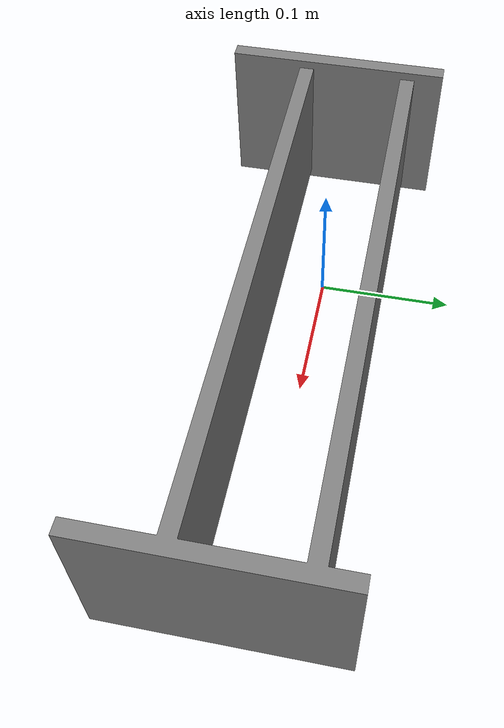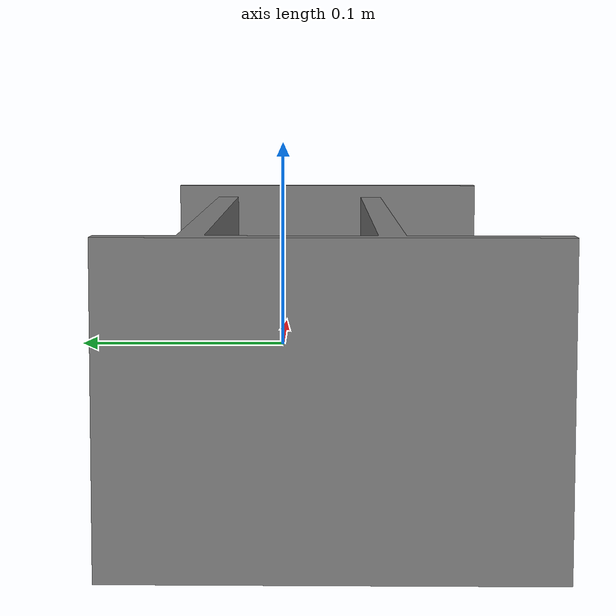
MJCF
<mujoco model="rack">
  <default>
    <default class="visual">
      <geom group="2" type="mesh" contype="0" conaffinity="0"/>
    </default>
    <default class="collision">
      <geom group="3" type="mesh"/>
    </default>
  </default>
  <asset>
    <mesh file="rack.obj"/>
    <mesh file="rack_collision_0.obj"/>
    <mesh file="rack_collision_1.obj"/>
    <mesh file="rack_collision_2.obj"/>
    <mesh file="rack_collision_3.obj"/>
    <mesh file="rack_collision_4.obj"/>
    <mesh file="rack_collision_5.obj"/>
    <mesh file="rack_collision_6.obj"/>
  </asset>
  <worldbody>
    <body name="rack">
      <geom mesh="rack" class="visual"/>
      <geom mesh="rack_collision_0" rgba="0.5942348748746239 0.9133402008931135 0.1079347351488198 1" class="collision"/>
      <geom mesh="rack_collision_1" rgba="0.6464843110676932 0.8782758020240727 0.29255247529053674 1" class="collision"/>
      <geom mesh="rack_collision_2" rgba="0.11889087029158008 0.7690649798602568 0.8104262033970712 1" class="collision"/>
      <geom mesh="rack_collision_3" rgba="0.7711208480128682 0.6998160439756024 0.5247169228210097 1" class="collision"/>
      <geom mesh="rack_collision_4" rgba="0.8701035945323015 0.48571113185099535 0.9086829475513054 1" class="collision"/>
      <geom mesh="rack_collision_5" rgba="0.10100949448874308 0.22990317975901564 0.29193726549616905 1" class="collision"/>
      <geom mesh="rack_collision_6" rgba="0.06199251722865973 0.6177107492770662 0.7009419742103689 1" class="collision"/>
    </body>
  </worldbody>
</mujoco>
